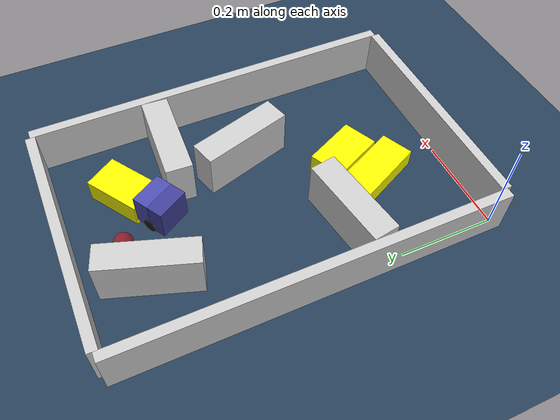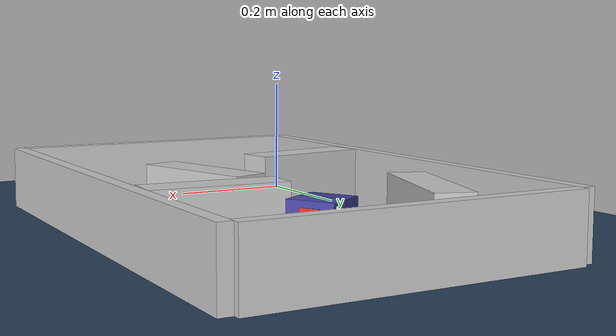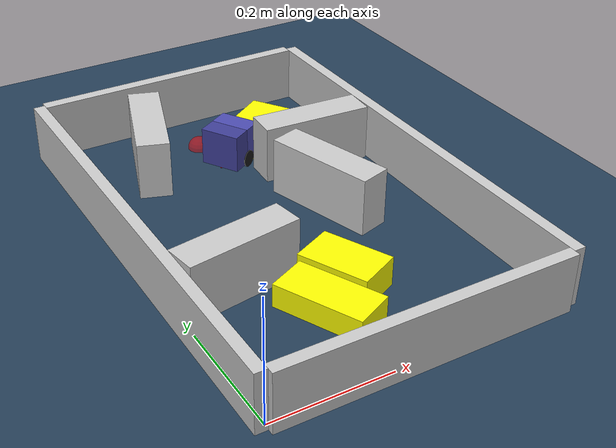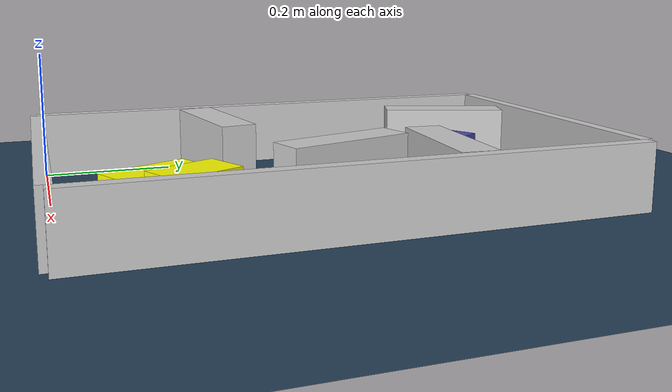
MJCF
<?xml version='1.0' encoding='utf-8'?>
<mujoco model="real_buildable">
  <compiler angle="degree" />
  <option timestep="0.002" integrator="implicitfast" iterations="100" cone="elliptic" />
  <default>
    <geom density="1" />
  </default>
  <asset>
    <texture builtin="gradient" height="3072" rgb1="0.3 0.5 0.7" rgb2="0 0 0" type="skybox" width="512" />
    <texture builtin="checker" height="300" mark="edge" markrgb="0.8 0.8 0.8" name="groundplane" rgb1="0.2 0.3 0.4" rgb2="0.1 0.2 0.3" type="2d" width="300" />
    <material name="groundplane" reflectance="0.2" texrepeat="5 5" texture="groundplane" texuniform="true" />
  </asset>
  <worldbody>
    <light dir="0 0 -1" directional="true" pos="0 0 1.5" />
    <geom name="floor" type="plane" condim="4" friction="0.5 0.005 0.001" material="groundplane" size="0 0 0.05" />
    <body name="walls">
      <geom name="wall_boundary_left" type="box" condim="4" friction="1.0 0.005 0.0001" rgba="0.8 0.8 0.8 1" pos="-0.010000 0.387500 0.050000" euler="0 0 0.000000" size="0.010000 0.397500 0.050000" />
      <geom name="wall_boundary_right" type="box" condim="4" friction="1.0 0.005 0.0001" rgba="0.8 0.8 0.8 1" pos="0.500000 0.387500 0.050000" euler="0 0 0.000000" size="0.010000 0.397500 0.050000" />
      <geom name="wall_boundary_bottom" type="box" condim="4" friction="1.0 0.005 0.0001" rgba="0.8 0.8 0.8 1" pos="0.245000 -0.010000 0.050000" euler="0 0 0.000000" size="0.245000 0.010000 0.050000" />
      <geom name="wall_boundary_top" type="box" condim="4" friction="1.0 0.005 0.0001" rgba="0.8 0.8 0.8 1" pos="0.245000 0.785000 0.050000" euler="0 0 0.000000" size="0.245000 0.010000 0.050000" />
      <geom name="wall_inner_1" type="box" condim="4" friction="1.0 0.005 0.0001" rgba="0.8 0.8 0.8 1" pos="0.100602 0.263208 0.050000" euler="0 0 189.001232" size="0.097500 0.027500 0.050000" />
      <geom name="wall_inner_2" type="box" condim="4" friction="1.0 0.005 0.0001" rgba="0.8 0.8 0.8 1" pos="0.339686 0.391693 0.050000" euler="0 0 106.502664" size="0.097500 0.027500 0.050000" />
      <geom name="wall_inner_3" type="box" condim="4" friction="1.0 0.005 0.0001" rgba="0.8 0.8 0.8 1" pos="0.391000 0.532000 0.050000" euler="0 0 176.500000" size="0.097500 0.027500 0.050000" />
      <geom name="wall_inner_4" type="box" condim="4" friction="1.0 0.005 0.0001" rgba="0.8 0.8 0.8 1" pos="0.138000 0.653000 0.050000" euler="0 0 71.100000" size="0.097500 0.027500 0.050000" />
    </body>
    <body name="car" pos="0.26351952666833023 0.59156765802028588 0.01" quat="0.96417485723866148 0 0 0.26526749644237729">
      <freejoint name="car_freejoint" />
      <inertial pos="0 0 0.0375" mass="0.35" diaginertia="0.000266 0.000266 0.000286" />
      <geom name="front_chassis_collision" type="box" pos="0.0175 0 0.0375" size="0.0175 0.035 0.0325" rgba="0.3 0.3 0.7 1" />
      <geom name="rear_chassis_collision" type="box" pos="-0.0175 0 0.0375" size="0.0175 0.035 0.0325" rgba="0.25 0.25 0.6 1" />
      <geom name="front_marker" type="box" pos="0.034 0 0.0505" size="0.002 0.015 0.01" rgba="1 0.2 0.2 1" contype="0" conaffinity="0" />
      <body name="rear_support_body" pos="-0.03 0 0.0025">
        <joint name="rear_caster_joint" type="ball" damping="0.0001" />
        <inertial pos="0 0 0" mass="0.025" diaginertia="0.000001 0.000001 0.000001" />
        <geom name="rear_support" type="sphere" pos="0 0 0" size="0.0025" friction="0 0 0" rgba="0.7 0.1 0.1 1" />
      </body>
      <body name="front_support_body" pos="0.03 0 0.0025">
        <joint name="front_caster_joint" type="ball" damping="0.0001" />
        <inertial pos="0 0 0" mass="0.025" diaginertia="0.000001 0.000001 0.000001" />
        <geom name="front_support" type="sphere" pos="0 0 0" size="0.0025" friction="0 0 0" rgba="0.1 0.7 0.1 1" />
      </body>
      <body name="left_wheel" pos="0 0.0375 0.015">
        <inertial pos="0 0 0" mass="0.05" diaginertia="0.000003 0.000006 0.000003" />
        <joint name="left_wheel_joint" type="hinge" axis="0 1 0" damping="0.01" armature="0.0001" />
        <geom name="left_wheel_collision" type="cylinder" size="0.015 0.0005" euler="90 0 0" rgba="0.1 0.1 0.1 1" />
      </body>
      <body name="right_wheel" pos="0 -0.0375 0.015">
        <inertial pos="0 0 0" mass="0.05" diaginertia="0.000003 0.000006 0.000003" />
        <joint name="right_wheel_joint" type="hinge" axis="0 1 0" damping="0.01" armature="0.0001" />
        <geom name="right_wheel_collision" type="cylinder" size="0.015 0.0005" euler="90 0 0" rgba="0.1 0.1 0.1 1" />
      </body>
    </body>
    <body name="obstacle_0_movable">
      <geom name="obstacle_0_movable" condim="4" pos="0.24739850313925307 0.19904310251562413 0.025000000000000001" friction="1 0.005 0.0001" rgba="1 1 0 1" size="0.037500 0.060000 0.025000" type="box" mass="0.1" quat="0.97610623071988201 0 0 0.21729387094399252" />
      <joint type="free" />
    </body>
    <body name="obstacle_1_movable">
      <geom name="obstacle_1_movable" condim="4" pos="0.34552081943933977 0.64395972649800992 0.025000000000000001" friction="1 0.005 0.0001" rgba="1 1 0 1" size="0.037500 0.060000 0.025000" type="box" mass="0.1" quat="0.88017922605989352 0 0 -0.4746414752343151" />
      <joint type="free" />
    </body>
    <body name="obstacle_2_movable">
      <geom name="obstacle_2_movable" condim="4" pos="0.19010224722219754 0.15038441369739369 0.02" friction="1 0.005 0.0001" rgba="1 1 0 1" size="0.035000 0.075000 0.020000" type="box" mass="0.1" quat="0.97603388189369134 0 0 0.21761861454280937" />
      <joint type="free" />
    </body>
    <site name="goal" type="sphere" pos="0.245000 0.680000 0.0" size="0.02" rgba="1 0 0 0.5" />
  </worldbody>
  <actuator>
    <velocity name="left_wheel_drive" joint="left_wheel_joint" ctrlrange="-25 25" kv="0.75" forcerange="-0.5 0.5" />
    <velocity name="right_wheel_drive" joint="right_wheel_joint" ctrlrange="-25 25" kv="0.75" forcerange="-0.5 0.5" />
  </actuator>
</mujoco>
